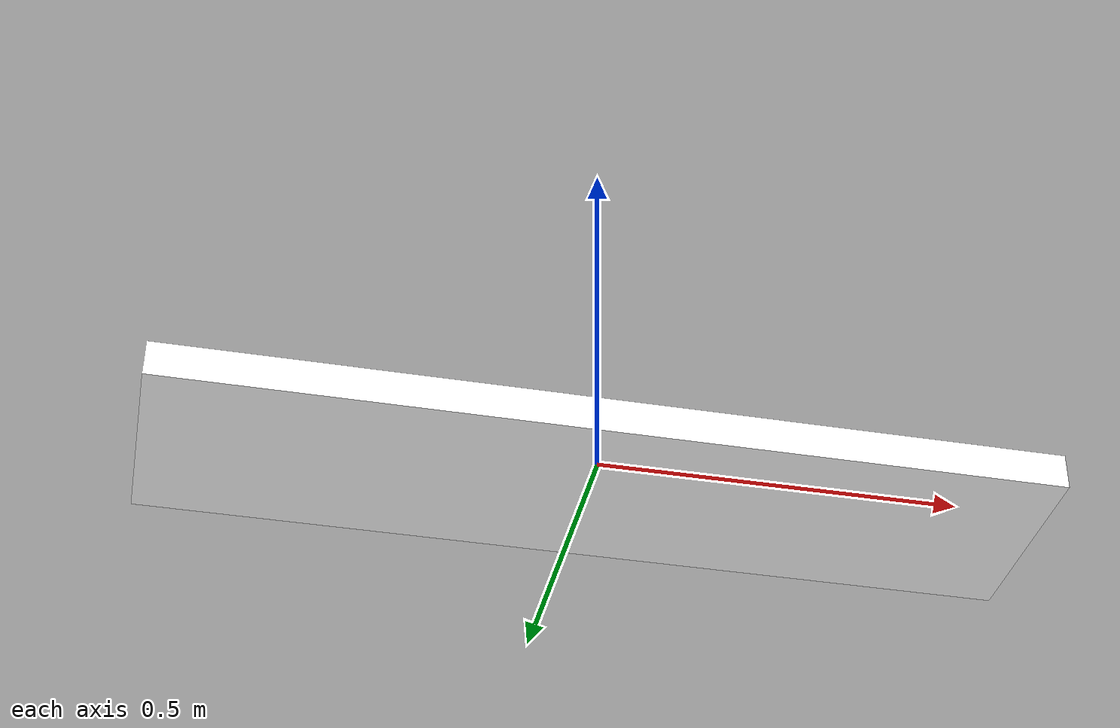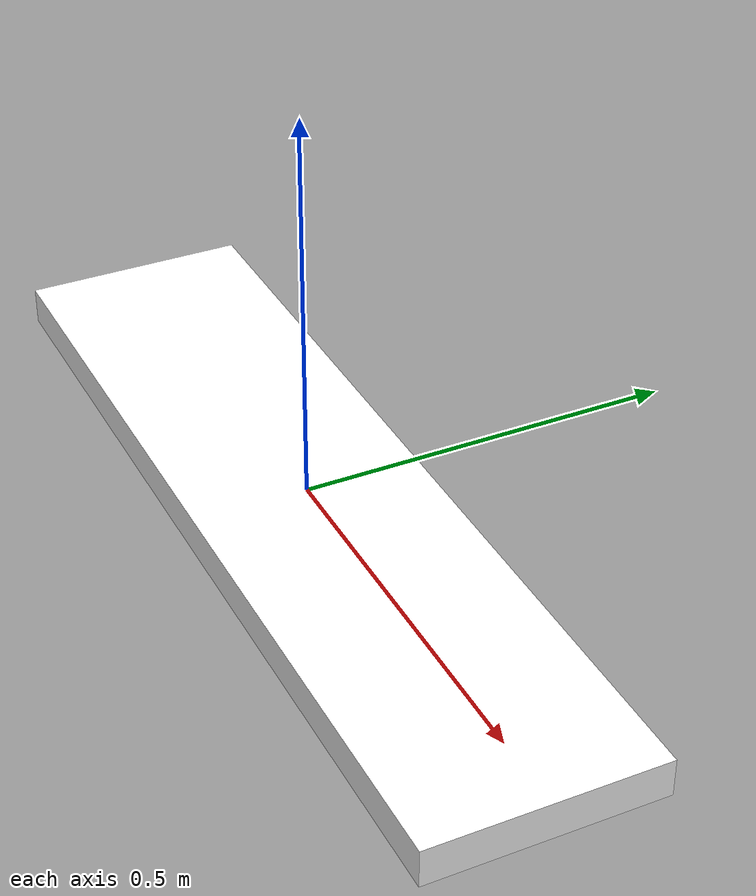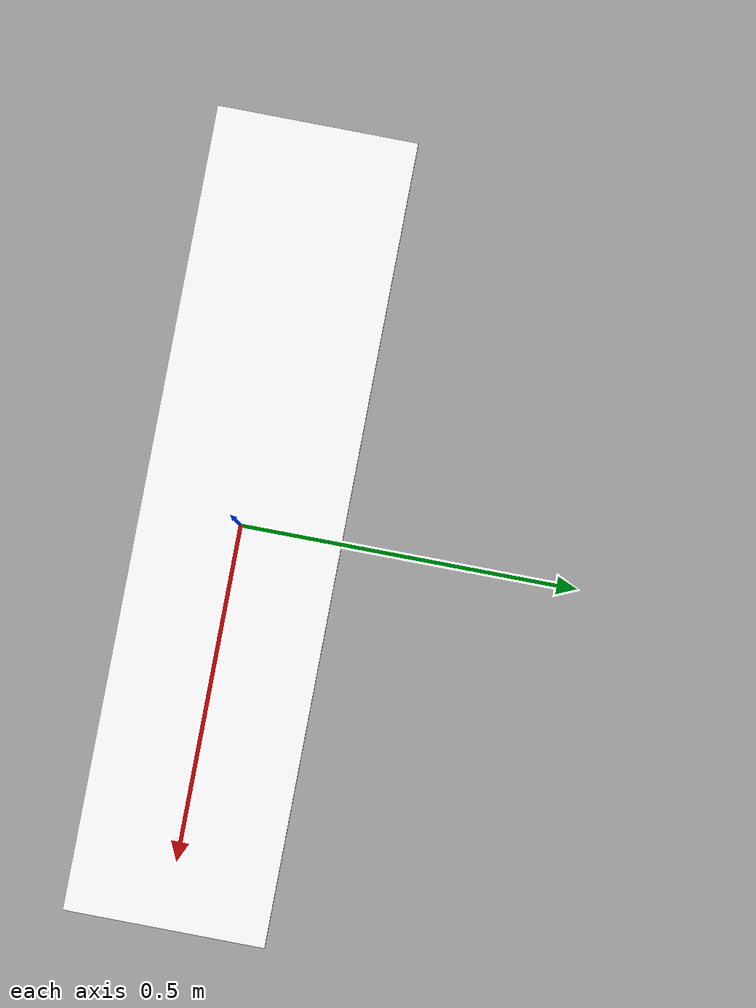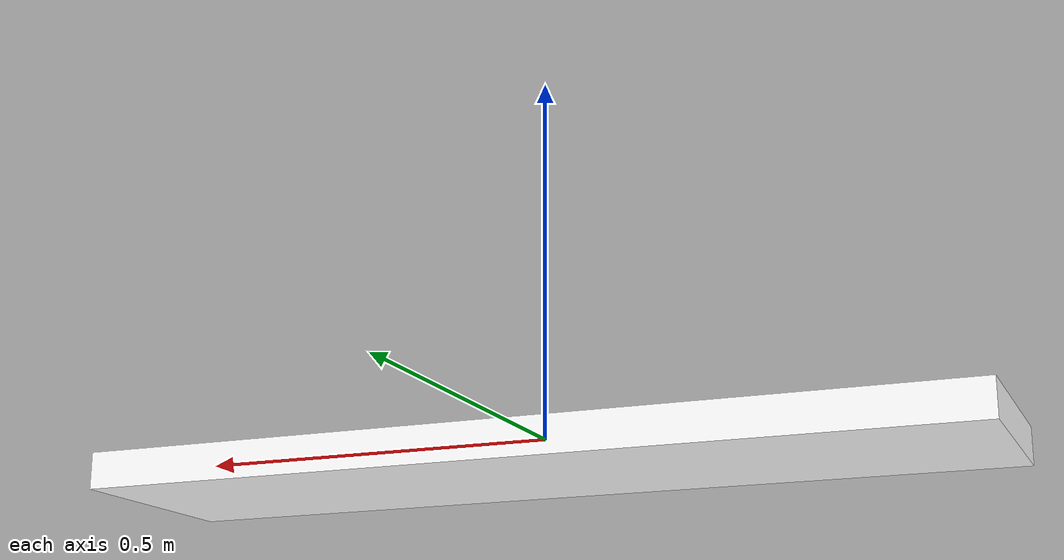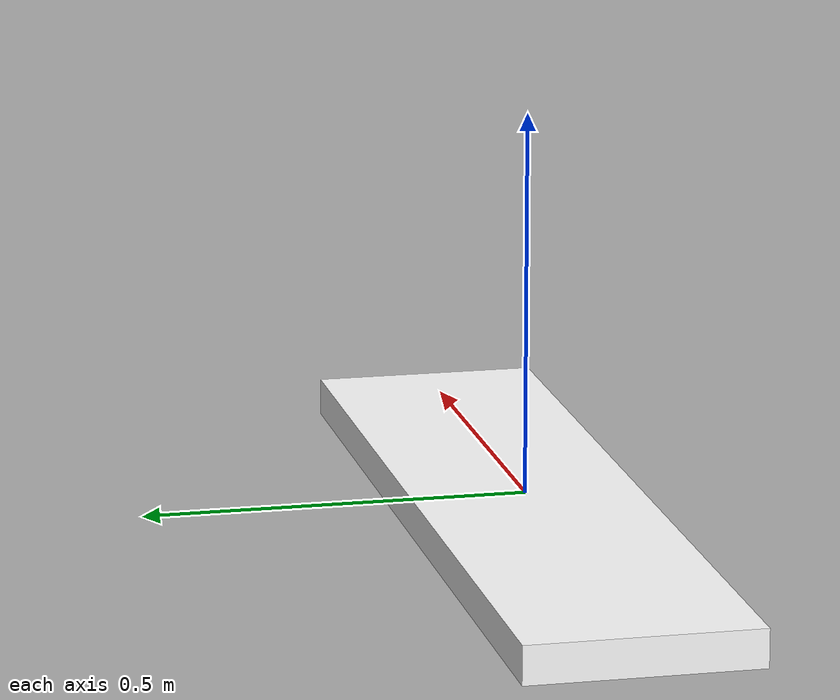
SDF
<?xml version="1.0" ?>
<sdf version="1.10">
  <model name="fluorescent_ceiling_light">
    <!-- This is a static fixture -->
    <static>true</static>

    <!-- Light housing / panel geometry -->
    <link name="panel_link">
      <pose>0 0 0 0 0 0</pose>

      <!-- Collision (simple box) -->
      <collision name="panel_collision">
        <geometry>
          <box>
            <!-- size: length x width x thickness -->
            <size>1.2 0.3 0.05</size>
          </box>
        </geometry>
      </collision>

      <!-- Visual (white, slightly emissive to look "lit") -->
      <visual name="panel_visual">
        <geometry>
          <box>
            <size>1.2 0.3 0.05</size>
          </box>
        </geometry>
        <material>
          <!-- Soft grey ambient -->
          <ambient>0.2 0.2 0.2 1</ambient>
          <!-- White diffuse -->
          <diffuse>1 1 1 1</diffuse>
                    <!-- Slightly emissive so it glows (RGBA, 0-1 range) -->
          <emissive>0.8 0.8 0.7 1</emissive>
          <!-- Mild specular highlight -->
          <specular>0.2 0.2 0.2 1</specular>
        </material>
        <!-- Slightly offset to show the lit face on the bottom -->
        <pose>0 0 -0.025 0 0 0</pose>
      </visual>
          <!-- Light source itself (spot light pointing downwards) -->
      <light name="panel_light" type="spot">
        <!-- Position the light just below the panel, pointing down (negative Z) -->
        <pose>0 0 -0.03 0 0 0</pose>

        <!-- Basic color/intensity -->
        <!-- diffuse = color of the light, specular = highlight color -->
        <diffuse>1.0 0.98 0.9 1</diffuse>   <!-- warm-ish white -->
        <specular>0.5 0.5 0.5 1</specular>

        <!-- Attenuation controls brightness falloff -->
        <attenuation>
          <range>10</range>       <!-- meters -->
          <constant>0.8</constant>
          <linear>0.2</linear>
          <quadratic>0.02</quadratic>
        </attenuation>

        <!-- Spot light properties -->
        <direction>0 0 -1</direction>      <!-- downwards -->
        <spot>
          <!-- angles in radians; inner < outer -->
          <inner_angle>0.9</inner_angle>   <!-- ~52 degrees -->
          <outer_angle>1.2</outer_angle>   <!-- ~69 degrees -->
          <falloff>0.5</falloff>
        </spot>

        <cast_shadows>true</cast_shadows>
      </light>
    </link>
  </model>
</sdf>
